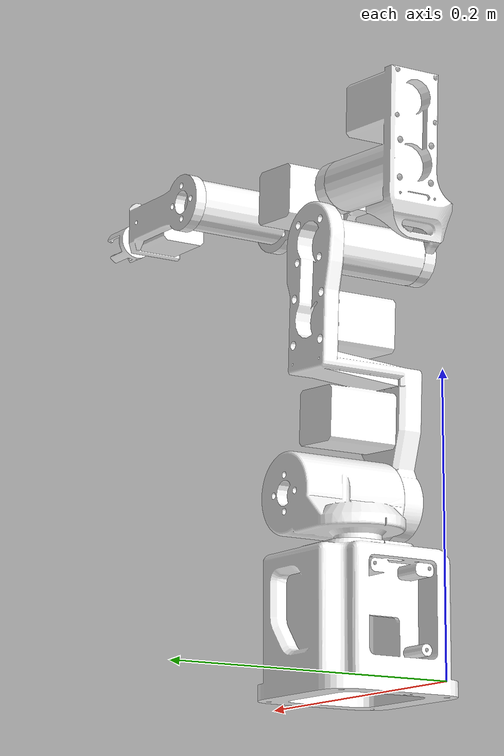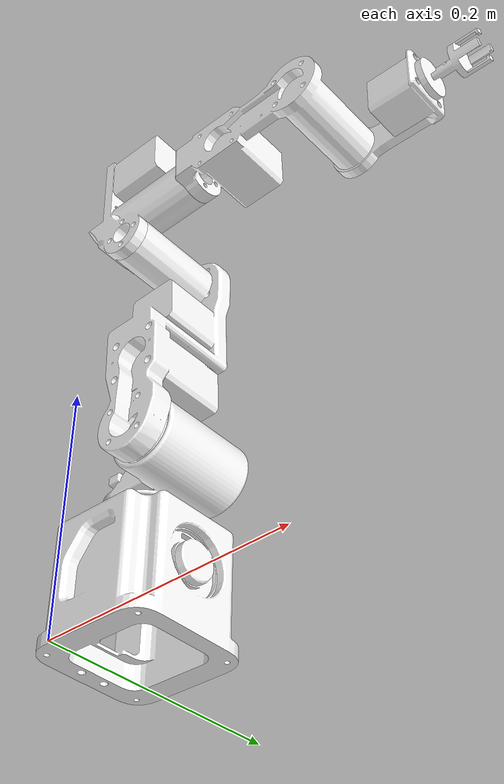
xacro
<?xml version="1.0"?>
<robot xmlns:xacro="http://www.ros.org/wiki/xacro" name="dummy2-SLDASM">
    <xacro:arg name="initial_positions_file" default="initial_positions.yaml" />

    <!-- Import dummy2-SLDASM urdf file -->
    <xacro:include filename="$(find dummy2-gripperv3_description)/urdf/dummy2-SLDASM.urdf" />

    <!-- Import control_xacro -->
    <xacro:include filename="dummy2-SLDASM.ros2_control.xacro" />

    <xacro:dummy2-SLDASM_ros2_control name="FakeSystem" initial_positions_file="$(arg initial_positions_file)"/>

</robot>

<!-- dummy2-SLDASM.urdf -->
<robot
  name="dummy2-SLDASM">
  <link
    name="base_link">
    <inertial>
      <origin
        xyz="0.0414130360937032 0.0406718044276676 0.0386845489683347"
        rpy="0 0 0" />
      <mass
        value="0.387673822333728" />
      <inertia
        ixx="0.000777649014838783"
        ixy="-2.70111444450116E-07"
        ixz="-7.00973333936696E-06"
        iyy="0.000718387993685806"
        iyz="-8.02049294338553E-07"
        izz="0.000791143378494355" />
    </inertial>
    <visual>
      <origin
        xyz="0 0 0"
        rpy="0 0 0" />
      <geometry>
        <mesh
          filename="package://dummy2-gripperv3_description/meshes/base_link.STL" />
      </geometry>
      <material
        name="">
        <color
          rgba="1 1 1 1" />
      </material>
    </visual>
    <collision>
      <origin
        xyz="0 0 0"
        rpy="0 0 0" />
      <geometry>
        <mesh
          filename="package://dummy2-gripperv3_description/meshes/base_link.STL" />
      </geometry>
    </collision>
  </link>
  <link
    name="l1">
    <inertial>
      <origin
        xyz="0.0269163124747258 -0.0056237301524306 0.0344105082650809"
        rpy="0 0 0" />
      <mass
        value="0.192001303218632" />
      <inertia
        ixx="0.000147334590447093"
        ixy="1.12051433464132E-05"
        ixz="-4.26888163188289E-05"
        iyy="0.000157405351191848"
        iyz="7.79877632367723E-06"
        izz="0.000177766468080378" />
    </inertial>
    <visual>
      <origin
        xyz="0 0 0"
        rpy="0 0 0" />
      <geometry>
        <mesh
          filename="package://dummy2-gripperv3_description/meshes/l1.STL" />
      </geometry>
      <material
        name="">
        <color
          rgba="1 1 1 1" />
      </material>
    </visual>
    <collision>
      <origin
        xyz="0 0 0"
        rpy="0 0 0" />
      <geometry>
        <mesh
          filename="package://dummy2-gripperv3_description/meshes/l1.STL" />
      </geometry>
    </collision>
  </link>
  <joint
    name="j1"
    type="revolute">
    <origin
      xyz="0.0392540163906673 0.0407323237392788 0.0820000000000018"
      rpy="0 0 0" />
    <parent
      link="base_link" />
    <child
      link="l1" />
    <axis
      xyz="0 0 1" />
    <limit
      lower="-3.14"
      upper="3.14"
      effort="0"
      velocity="0" />
  </joint>
  <link
    name="l2">
    <inertial>
      <origin
        xyz="-0.0024744 0.10233 -0.022453"
        rpy="0 0 0" />
      <mass
        value="0.31882" />
      <inertia
        ixx="0.0010182"
        ixy="5.4742E-05"
        ixz="-6.4406E-06"
        iyy="0.00020838"
        iyz="0.00010214"
        izz="0.0009056" />
    </inertial>
    <visual>
      <origin
        xyz="0 0 0"
        rpy="0 0 0" />
      <geometry>
        <mesh
          filename="package://dummy2-gripperv3_description/meshes/l2.STL" />
      </geometry>
      <material
        name="">
        <color
          rgba="1 1 1 1" />
      </material>
    </visual>
    <collision>
      <origin
        xyz="0 0 0"
        rpy="0 0 0" />
      <geometry>
        <mesh
          filename="package://dummy2-gripperv3_description/meshes/l2.STL" />
      </geometry>
    </collision>
  </link>
  <joint
    name="j2"
    type="revolute">
    <origin
      xyz="0.0391139899839922 -0.0475202565028203 0.0424031868280582"
      rpy="1.57079632679491 0 0.0217856610140804" />
    <parent
      link="l1" />
    <child
      link="l2" />
    <axis
      xyz="0 0 -1" />
    <limit
      lower="-3.14"
      upper="3.14"
      effort="0"
      velocity="0" />
  </joint>
  <link
    name="l3">
    <inertial>
      <origin
        xyz="0.00982202582825078 -0.065705588173923 -0.0227777009132376"
        rpy="0 0 0" />
      <mass
        value="0.177031969385558" />
      <inertia
        ixx="0.000196740625169965"
        ixy="6.39357247299932E-06"
        ixz="-1.2869164739589E-06"
        iyy="0.000100666168469324"
        iyz="-2.26749158246386E-05"
        izz="0.000243511147945243" />
    </inertial>
    <visual>
      <origin
        xyz="0 0 0"
        rpy="0 0 0" />
      <geometry>
        <mesh
          filename="package://dummy2-gripperv3_description/meshes/l3.STL" />
      </geometry>
      <material
        name="">
        <color
          rgba="1 1 1 1" />
      </material>
    </visual>
    <collision>
      <origin
        xyz="0 0 0"
        rpy="0 0 0" />
      <geometry>
        <mesh
          filename="package://dummy2-gripperv3_description/meshes/l3.STL" />
      </geometry>
    </collision>
  </link>
  <joint
    name="j3"
    type="revolute">
    <origin
      xyz="-0.00647360594018897 0.168725443290264 0.0191499999999696"
      rpy="0 0 -3.14159265358979" />
    <parent
      link="l2" />
    <child
      link="l3" />
    <axis
      xyz="0 0 -1" />
    <limit
      lower="-3.14"
      upper="3.14"
      effort="0"
      velocity="0" />
  </joint>
  <link
    name="l4">
    <inertial>
      <origin
        xyz="0.00875633257448984 -0.00120706473295173 0.0721271140835659"
        rpy="0 0 0" />
      <mass
        value="0.169343235311395" />
      <inertia
        ixx="0.000272837799469975"
        ixy="-1.37510341482809E-06"
        ixz="-4.44369379231373E-05"
        iyy="0.000325021018054113"
        iyz="-5.85486926747817E-06"
        izz="8.92852063803601E-05" />
    </inertial>
    <visual>
      <origin
        xyz="0 0 0"
        rpy="0 0 0" />
      <geometry>
        <mesh
          filename="package://dummy2-gripperv3_description/meshes/l4.STL" />
      </geometry>
      <material
        name="">
        <color
          rgba="1 1 1 1" />
      </material>
    </visual>
    <collision>
      <origin
        xyz="0 0 0"
        rpy="0 0 0" />
      <geometry>
        <mesh
          filename="package://dummy2-gripperv3_description/meshes/l4.STL" />
      </geometry>
    </collision>
  </link>
  <joint
    name="j4"
    type="revolute">
    <origin
      xyz="-0.037831 -0.056583 -0.02515"
      rpy="3.101 1.5708 0" />
    <parent
      link="l3" />
    <child
      link="l4" />
    <axis
      xyz="0 0 1" />
    <limit
      lower="-3.14"
      upper="3.14"
      effort="0"
      velocity="0" />
  </joint>
  <link
    name="l5">
    <inertial>
      <origin
        xyz="0.0503111008189627 -0.000539752076599731 -0.0586137579632375"
        rpy="0 0 0" />
      <mass
        value="0.0670202076275983" />
      <inertia
        ixx="1.65218379011082E-05"
        ixy="3.15300079319617E-07"
        ixz="-9.04914206209732E-06"
        iyy="4.584421849236E-05"
        iyz="6.5228627023569E-08"
        izz="4.0972293581658E-05" />
    </inertial>
    <visual>
      <origin
        xyz="0 0 0"
        rpy="0 0 0" />
      <geometry>
        <mesh
          filename="package://dummy2-gripperv3_description/meshes/l5.STL" />
      </geometry>
      <material
        name="">
        <color
          rgba="1 1 1 1" />
      </material>
    </visual>
    <collision>
      <origin
        xyz="0 0 0"
        rpy="0 0 0" />
      <geometry>
        <mesh
          filename="package://dummy2-gripperv3_description/meshes/l5.STL" />
      </geometry>
    </collision>
  </link>
  <joint
    name="j5"
    type="revolute">
    <origin
      xyz="-0.014464 -4.7163E-05 0.11"
      rpy="1.5708 -1.5302 -1.5675" />
    <parent
      link="l4" />
    <child
      link="l5" />
    <axis
      xyz="0 0 1" />
    <limit
      lower="-3.14"
      upper="3.14"
      effort="0"
      velocity="0" />
  </joint>
  <link
    name="l6">
    <inertial>
      <origin
        xyz="1.14605602785645E-10 4.2896131091652E-11 -0.0028358915417413"
        rpy="0 0 0" />
      <mass
        value="0.00415080295459014" />
      <inertia
        ixx="4.39181646124603E-07"
        ixy="-4.17234486196236E-11"
        ixz="5.18167500674017E-15"
        iyy="4.38951442749453E-07"
        iyz="1.79463377636992E-15"
        izz="3.0018416400469E-07" />
    </inertial>
    <visual>
      <origin
        xyz="0 0 0"
        rpy="0 0 0" />
      <geometry>
        <mesh
          filename="package://dummy2-gripperv3_description/meshes/l6.STL" />
      </geometry>
      <material
        name="">
        <color
          rgba="1 1 1 1" />
      </material>
    </visual>
    <collision>
      <origin
        xyz="0 0 0"
        rpy="0 0 0" />
      <geometry>
        <mesh
          filename="package://dummy2-gripperv3_description/meshes/l6.STL" />
      </geometry>
    </collision>
  </link>
  <joint
    name="j6"
    type="revolute">
    <origin
      xyz="0.106996171166484 -0.000960101234833921 -0.0526108232633675"
      rpy="-1.57079632679544 1.56753815017486 -1.58276052327955" />
    <parent
      link="l5" />
    <child
      link="l6" />
    <axis
      xyz="0 0 -1" />
    <limit
      lower="-3.14"
      upper="3.14"
      effort="0"
      velocity="0" />
  </joint>
</robot>
